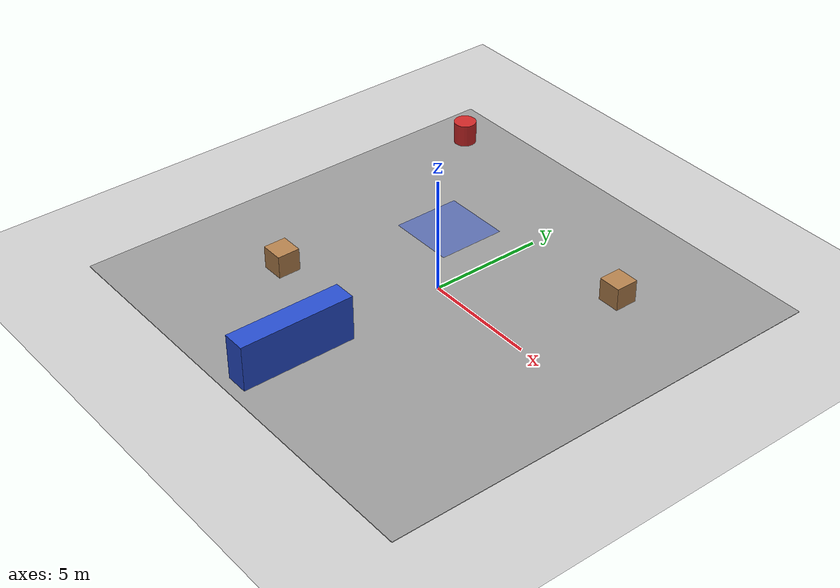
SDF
<?xml version="1.0" ?>
<sdf version="1.6">
  <world name="warehouse">

    <!-- 조명 -->
    <include>
      <uri>model://sun</uri>
    </include>

    <!-- 평면 바닥 -->
    <include>
      <uri>model://ground_plane</uri>
    </include>

    <!-- 카메라 시점 조정 -->
    <scene>
      <ambient>0.8 0.8 0.8 1</ambient>
      <shadows>false</shadows>
    </scene>

    <!-- GUI 설정 -->
    <gui fullscreen='0'>
      <camera name='user_camera'>
        <pose>4.0 -4.0 4.0 0.0 0.6 2.0</pose>
        <view_controller>orbit</view_controller>
        <projection_type>perspective</projection_type>
        <track_visual>
          <name>box1</name>
          <min_dist>1</min_dist>
          <max_dist>10</max_dist>
        </track_visual>
      </camera>
    </gui>

    <!-- 물리 시뮬레이션 설정 -->
    <physics type="ode">
      <real_time_update_rate>1000.0</real_time_update_rate>
      <max_step_size>0.001</max_step_size>
      <real_time_factor>1</real_time_factor>
      <ode>
        <solver>
          <type>quick</type>
          <iters>150</iters>
          <precon_iters>0</precon_iters>
          <sor>1.400000</sor>
          <use_dynamic_moi_rescaling>1</use_dynamic_moi_rescaling>
        </solver>
        <constraints>
          <cfm>0.00001</cfm>
          <erp>0.2</erp>
          <contact_max_correcting_vel>2000.000000</contact_max_correcting_vel>
          <contact_surface_layer>0.01000</contact_surface_layer>
        </constraints>
      </ode>
    </physics>

    <!-- 창고 바닥 (20m x 20m 경계) -->
    <model name="warehouse_floor">
      <static>true</static>
      <link name="floor_link">
        <collision name="collision">
          <geometry>
            <box>
              <size>20 20 0.1</size>
            </box>
          </geometry>
        </collision>
        <visual name="visual">
          <geometry>
            <box>
              <size>20 20 0.1</size>
            </box>
          </geometry>
          <material>
            <script>
              <uri>file://media/materials/scripts/gazebo.material</uri>
              <name>Gazebo/Grey</name>
            </script>
            <ambient>0.6 0.6 0.6 1</ambient>
            <diffuse>0.7 0.7 0.7 1</diffuse>
            <specular>0.01 0.01 0.01 1</specular>
          </material>
        </visual>
        <pose>0 0 -0.05 0 0 0</pose>
      </link>
    </model>

    <!-- 장애물: 박스 1 -->
    <model name="box1">
      <static>true</static>
      <link name="link">
        <collision name="collision">
          <geometry>
            <box>
              <size>1 1 1</size>
            </box>
          </geometry>
        </collision>
        <visual name="visual">
          <geometry>
            <box>
              <size>1 1 1</size>
            </box>
          </geometry>
          <material>
            <script>
              <uri>file://media/materials/scripts/gazebo.material</uri>
              <name>Gazebo/Wood</name>
            </script>
          </material>
        </visual>
        <pose>5 5 0.5 0 0 0</pose>
      </link>
    </model>

    <!-- 장애물: 박스 2 -->
    <model name="box2">
      <static>true</static>
      <link name="link">
        <collision name="collision">
          <geometry>
            <box>
              <size>1 1 1</size>
            </box>
          </geometry>
        </collision>
        <visual name="visual">
          <geometry>
            <box>
              <size>1 1 1</size>
            </box>
          </geometry>
          <material>
            <script>
              <uri>file://media/materials/scripts/gazebo.material</uri>
              <name>Gazebo/Wood</name>
            </script>
          </material>
        </visual>
        <pose>-5 -4 0.5 0 0 0</pose>
      </link>
    </model>

    <!-- 선반 (길쭉한 박스 모델) -->
    <model name="shelf">
      <static>true</static>
      <link name="link">
        <collision name="collision">
          <geometry>
            <box>
              <size>1 5 2</size>
            </box>
          </geometry>
        </collision>
        <visual name="visual">
          <geometry>
            <box>
              <size>1 5 2</size>
            </box>
          </geometry>
          <material>
            <script>
              <uri>file://media/materials/scripts/gazebo.material</uri>
              <name>Gazebo/Blue</name>
            </script>
            <ambient>0.2 0.4 0.8 1</ambient>
            <diffuse>0.2 0.4 0.8 1</diffuse>
          </material>
        </visual>
      </link>
      <pose>0 -7 1 0 0 0</pose>
    </model>

    <!-- 기둥 -->
    <model name="pillar">
      <static>true</static>
      <link name="link">
        <collision name="collision">
          <geometry>
            <cylinder>
              <radius>0.5</radius>
              <length>1.0</length>
            </cylinder>
          </geometry>
        </collision>
        <visual name="visual">
          <geometry>
            <cylinder>
              <radius>0.5</radius>
              <length>1.0</length>
            </cylinder>
          </geometry>
          <material>
            <script>
              <uri>file://media/materials/scripts/gazebo.material</uri>
              <name>Gazebo/Red</name>
            </script>
          </material>
        </visual>
      </link>
      <pose>-8 8 0.5 0 0 0</pose>
    </model>

    <!-- 미끄러운 구역 (시각만 표시) -->
    <model name="slippery_area">
      <static>true</static>
      <link name="link">
        <collision name="collision">
          <geometry>
            <box>
              <size>3 3 0.01</size>
            </box>
          </geometry>
          <surface>
            <friction>
              <ode>
                <mu>0.1</mu>
                <mu2>0.1</mu2>
              </ode>
            </friction>
          </surface>
        </collision>
        <visual name="visual">
          <geometry>
            <box>
              <size>3 3 0.01</size>
            </box>
          </geometry>
          <material>
            <script>
              <uri>file://media/materials/scripts/gazebo.material</uri>
              <name>Gazebo/BlueTransparent</name>
            </script>
              <ambient>1.0 1.0 0.0 0.8</ambient>
              <diffuse>1.0 1.0 0.0 0.8</diffuse>
              <specular>1.0 1.0 0.0 0.8</specular>
          </material>
        </visual>
      </link>
      <pose>-3 3 0.005 0 0 0</pose>
    </model>

    <!-- 필수 플러그인 설정 -->
    <plugin name="gazebo_ros_state" filename="libgazebo_ros_state.so">
      <update_rate>1.0</update_rate>
    </plugin>
  </world>
</sdf>
